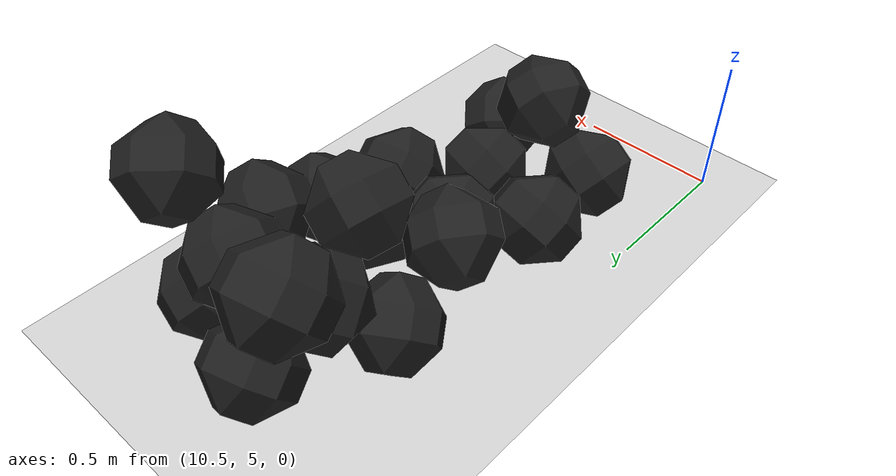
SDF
<sdf version="1.7">
 <world name="default">
  <model name="ground_plane">
   <static>1</static>
   <link name="link">
    <collision name="collision">
     <geometry><plane><normal>0 0 1</normal><size>100 100</size></plane></geometry>
     <surface><friction><ode><mu>100</mu><mu2>50</mu2></ode></friction></surface>
    </collision>
    <visual name="visual">
     <cast_shadows>0</cast_shadows>
     <geometry><plane><normal>0 0 1</normal><size>100 100</size></plane></geometry>
     <material>
      <script><uri>file://media/materials/scripts/gazebo.material</uri><name>Gazebo/Grey</name></script>
     </material>
    </visual>
   </link>
  </model>
  <model name="haoduomiantiaa_6">
   <link name="link_0">
    <inertial>
     <mass>0.2</mass>
     <inertia>
      <ixx>0.166667</ixx>
      <ixy>0</ixy>
      <ixz>0</ixz>
      <iyy>0.166667</iyy>
      <iyz>0</iyz>
      <izz>0.166667</izz>
     </inertia>
    </inertial>
    <visual name="visual">
     <geometry>
      <mesh>
       <uri>/home/lihaoyang/catkin_ws/src/pudong_gazebo/world/stl/haoduomianti.stl</uri>
       <scale>1 1 1</scale>
      </mesh>
     </geometry>
     <material>
      <lighting>1</lighting>
      <script><uri>file://media/materials/scripts/gazebo.material</uri><name>Gazebo/Black</name></script>
      <shader type="pixel"><normal_map>__default__</normal_map></shader>
      <ambient>0.3 0.3 0.3 1</ambient>
      <diffuse>0.7 0.7 0.7 1</diffuse>
      <specular>0.01 0.01 0.01 1</specular>
      <emissive>0 0 0 1</emissive>
     </material>
    </visual>
    <collision name="collision">
     <geometry>
      <mesh>
       <uri>/home/lihaoyang/catkin_ws/src/pudong_gazebo/world/stl/haoduomianti.stl</uri>
       <scale>1 1 1</scale>
      </mesh>
     </geometry>
     <surface>
      <friction>
       <ode><mu>1</mu><mu2>1</mu2><fdir1>0 0 0</fdir1><slip1>0</slip1><slip2>0</slip2></ode>
       <torsional>
        <coefficient>1</coefficient>
        <patch_radius>0</patch_radius>
        <surface_radius>0</surface_radius>
        <use_patch_radius>1</use_patch_radius>
        <ode><slip>0</slip></ode>
       </torsional>
      </friction>
      <bounce><restitution_coefficient>0</restitution_coefficient><threshold>1e+06</threshold></bounce>
      <contact>
       <collide_without_contact>0</collide_without_contact>
       <collide_without_contact_bitmask>1</collide_without_contact_bitmask>
       <collide_bitmask>1</collide_bitmask>
       <ode>
        <soft_cfm>0</soft_cfm>
        <soft_erp>0.2</soft_erp>
        <kp>1e+13</kp>
        <kd>1</kd>
        <max_vel>0.01</max_vel>
        <min_depth>0</min_depth>
       </ode>
       <bullet>
        <split_impulse>1</split_impulse>
        <split_impulse_penetration_threshold>-0.01</split_impulse_penetration_threshold>
        <soft_cfm>0</soft_cfm>
        <soft_erp>0.2</soft_erp>
        <kp>1e+13</kp>
        <kd>1</kd>
       </bullet>
      </contact>
     </surface>
    </collision>
   </link>
   <static>0</static>
   <pose>10.7575 6.37025 -0.115475 0.785391 -0.615336 -0.993175</pose>
  </model>
  <model name="haoduomiantiaa_12">
   <link name="link_0">
    <inertial>
     <mass>0.2</mass>
     <inertia>
      <ixx>0.166667</ixx>
      <ixy>0</ixy>
      <ixz>0</ixz>
      <iyy>0.166667</iyy>
      <iyz>0</iyz>
      <izz>0.166667</izz>
     </inertia>
    </inertial>
    <visual name="visual">
     <geometry>
      <mesh>
       <uri>/home/lihaoyang/catkin_ws/src/pudong_gazebo/world/stl/haoduomianti.stl</uri>
       <scale>1 1 1</scale>
      </mesh>
     </geometry>
     <material>
      <lighting>1</lighting>
      <script><uri>file://media/materials/scripts/gazebo.material</uri><name>Gazebo/Black</name></script>
      <shader type="pixel"><normal_map>__default__</normal_map></shader>
      <ambient>0.3 0.3 0.3 1</ambient>
      <diffuse>0.7 0.7 0.7 1</diffuse>
      <specular>0.01 0.01 0.01 1</specular>
      <emissive>0 0 0 1</emissive>
     </material>
    </visual>
    <collision name="collision">
     <geometry>
      <mesh>
       <uri>/home/lihaoyang/catkin_ws/src/pudong_gazebo/world/stl/haoduomianti.stl</uri>
       <scale>1 1 1</scale>
      </mesh>
     </geometry>
     <surface>
      <friction>
       <ode><mu>1</mu><mu2>1</mu2><fdir1>0 0 0</fdir1><slip1>0</slip1><slip2>0</slip2></ode>
       <torsional>
        <coefficient>1</coefficient>
        <patch_radius>0</patch_radius>
        <surface_radius>0</surface_radius>
        <use_patch_radius>1</use_patch_radius>
        <ode><slip>0</slip></ode>
       </torsional>
      </friction>
      <bounce><restitution_coefficient>0</restitution_coefficient><threshold>1e+06</threshold></bounce>
      <contact>
       <collide_without_contact>0</collide_without_contact>
       <collide_without_contact_bitmask>1</collide_without_contact_bitmask>
       <collide_bitmask>1</collide_bitmask>
       <ode>
        <soft_cfm>0</soft_cfm>
        <soft_erp>0.2</soft_erp>
        <kp>1e+13</kp>
        <kd>1</kd>
        <max_vel>0.01</max_vel>
        <min_depth>0</min_depth>
       </ode>
       <bullet>
        <split_impulse>1</split_impulse>
        <split_impulse_penetration_threshold>-0.01</split_impulse_penetration_threshold>
        <soft_cfm>0</soft_cfm>
        <soft_erp>0.2</soft_erp>
        <kp>1e+13</kp>
        <kd>1</kd>
       </bullet>
      </contact>
     </surface>
    </collision>
   </link>
   <static>0</static>
   <pose>10.9444 6.75933 -0.115547 0.78537 -0.615484 -1.28924</pose>
  </model>
  <model name="haoduomiantiaa_19">
   <link name="link_0">
    <inertial>
     <mass>0.2</mass>
     <inertia>
      <ixx>0.166667</ixx>
      <ixy>0</ixy>
      <ixz>0</ixz>
      <iyy>0.166667</iyy>
      <iyz>0</iyz>
      <izz>0.166667</izz>
     </inertia>
    </inertial>
    <visual name="visual">
     <geometry>
      <mesh>
       <uri>/home/lihaoyang/catkin_ws/src/pudong_gazebo/world/stl/haoduomianti.stl</uri>
       <scale>1 1 1</scale>
      </mesh>
     </geometry>
     <material>
      <lighting>1</lighting>
      <script><uri>file://media/materials/scripts/gazebo.material</uri><name>Gazebo/Black</name></script>
      <shader type="pixel"><normal_map>__default__</normal_map></shader>
      <ambient>0.3 0.3 0.3 1</ambient>
      <diffuse>0.7 0.7 0.7 1</diffuse>
      <specular>0.01 0.01 0.01 1</specular>
      <emissive>0 0 0 1</emissive>
     </material>
    </visual>
    <collision name="collision">
     <geometry>
      <mesh>
       <uri>/home/lihaoyang/catkin_ws/src/pudong_gazebo/world/stl/haoduomianti.stl</uri>
       <scale>1 1 1</scale>
      </mesh>
     </geometry>
     <surface>
      <friction>
       <ode><mu>1</mu><mu2>1</mu2><fdir1>0 0 0</fdir1><slip1>0</slip1><slip2>0</slip2></ode>
       <torsional>
        <coefficient>1</coefficient>
        <patch_radius>0</patch_radius>
        <surface_radius>0</surface_radius>
        <use_patch_radius>1</use_patch_radius>
        <ode><slip>0</slip></ode>
       </torsional>
      </friction>
      <bounce><restitution_coefficient>0</restitution_coefficient><threshold>1e+06</threshold></bounce>
      <contact>
       <collide_without_contact>0</collide_without_contact>
       <collide_without_contact_bitmask>1</collide_without_contact_bitmask>
       <collide_bitmask>1</collide_bitmask>
       <ode>
        <soft_cfm>0</soft_cfm>
        <soft_erp>0.2</soft_erp>
        <kp>1e+13</kp>
        <kd>1</kd>
        <max_vel>0.01</max_vel>
        <min_depth>0</min_depth>
       </ode>
       <bullet>
        <split_impulse>1</split_impulse>
        <split_impulse_penetration_threshold>-0.01</split_impulse_penetration_threshold>
        <soft_cfm>0</soft_cfm>
        <soft_erp>0.2</soft_erp>
        <kp>1e+13</kp>
        <kd>1</kd>
       </bullet>
      </contact>
     </surface>
    </collision>
   </link>
   <static>0</static>
   <pose>11.2537 5.85623 -0.115474 0.785399 -0.615345 -1.37989</pose>
  </model>
  <model name="haoduomiantiaa_26">
   <link name="link_0">
    <inertial>
     <mass>0.2</mass>
     <inertia>
      <ixx>0.166667</ixx>
      <ixy>0</ixy>
      <ixz>0</ixz>
      <iyy>0.166667</iyy>
      <iyz>0</iyz>
      <izz>0.166667</izz>
     </inertia>
    </inertial>
    <visual name="visual">
     <geometry>
      <mesh>
       <uri>/home/lihaoyang/catkin_ws/src/pudong_gazebo/world/stl/haoduomianti.stl</uri>
       <scale>1 1 1</scale>
      </mesh>
     </geometry>
     <material>
      <lighting>1</lighting>
      <script><uri>file://media/materials/scripts/gazebo.material</uri><name>Gazebo/Black</name></script>
      <shader type="pixel"><normal_map>__default__</normal_map></shader>
      <ambient>0.3 0.3 0.3 1</ambient>
      <diffuse>0.7 0.7 0.7 1</diffuse>
      <specular>0.01 0.01 0.01 1</specular>
      <emissive>0 0 0 1</emissive>
     </material>
    </visual>
    <collision name="collision">
     <geometry>
      <mesh>
       <uri>/home/lihaoyang/catkin_ws/src/pudong_gazebo/world/stl/haoduomianti.stl</uri>
       <scale>1 1 1</scale>
      </mesh>
     </geometry>
     <surface>
      <friction>
       <ode><mu>1</mu><mu2>1</mu2><fdir1>0 0 0</fdir1><slip1>0</slip1><slip2>0</slip2></ode>
       <torsional>
        <coefficient>1</coefficient>
        <patch_radius>0</patch_radius>
        <surface_radius>0</surface_radius>
        <use_patch_radius>1</use_patch_radius>
        <ode><slip>0</slip></ode>
       </torsional>
      </friction>
      <bounce><restitution_coefficient>0</restitution_coefficient><threshold>1e+06</threshold></bounce>
      <contact>
       <collide_without_contact>0</collide_without_contact>
       <collide_without_contact_bitmask>1</collide_without_contact_bitmask>
       <collide_bitmask>1</collide_bitmask>
       <ode>
        <soft_cfm>0</soft_cfm>
        <soft_erp>0.2</soft_erp>
        <kp>1e+13</kp>
        <kd>1</kd>
        <max_vel>0.01</max_vel>
        <min_depth>0</min_depth>
       </ode>
       <bullet>
        <split_impulse>1</split_impulse>
        <split_impulse_penetration_threshold>-0.01</split_impulse_penetration_threshold>
        <soft_cfm>0</soft_cfm>
        <soft_erp>0.2</soft_erp>
        <kp>1e+13</kp>
        <kd>1</kd>
       </bullet>
      </contact>
     </surface>
    </collision>
   </link>
   <static>0</static>
   <pose>11.3405 6.13184 -0.115393 0.784571 -0.615821 1.86249</pose>
  </model>
  <model name="haoduomiantiaa_32">
   <link name="link_0">
    <inertial>
     <mass>0.2</mass>
     <inertia>
      <ixx>0.166667</ixx>
      <ixy>0</ixy>
      <ixz>0</ixz>
      <iyy>0.166667</iyy>
      <iyz>0</iyz>
      <izz>0.166667</izz>
     </inertia>
    </inertial>
    <visual name="visual">
     <geometry>
      <mesh>
       <uri>/home/lihaoyang/catkin_ws/src/pudong_gazebo/world/stl/haoduomianti.stl</uri>
       <scale>1 1 1</scale>
      </mesh>
     </geometry>
     <material>
      <lighting>1</lighting>
      <script><uri>file://media/materials/scripts/gazebo.material</uri><name>Gazebo/Black</name></script>
      <shader type="pixel"><normal_map>__default__</normal_map></shader>
      <ambient>0.3 0.3 0.3 1</ambient>
      <diffuse>0.7 0.7 0.7 1</diffuse>
      <specular>0.01 0.01 0.01 1</specular>
      <emissive>0 0 0 1</emissive>
     </material>
    </visual>
    <collision name="collision">
     <geometry>
      <mesh>
       <uri>/home/lihaoyang/catkin_ws/src/pudong_gazebo/world/stl/haoduomianti.stl</uri>
       <scale>1 1 1</scale>
      </mesh>
     </geometry>
     <surface>
      <friction>
       <ode><mu>1</mu><mu2>1</mu2><fdir1>0 0 0</fdir1><slip1>0</slip1><slip2>0</slip2></ode>
       <torsional>
        <coefficient>1</coefficient>
        <patch_radius>0</patch_radius>
        <surface_radius>0</surface_radius>
        <use_patch_radius>1</use_patch_radius>
        <ode><slip>0</slip></ode>
       </torsional>
      </friction>
      <bounce><restitution_coefficient>0</restitution_coefficient><threshold>1e+06</threshold></bounce>
      <contact>
       <collide_without_contact>0</collide_without_contact>
       <collide_without_contact_bitmask>1</collide_without_contact_bitmask>
       <collide_bitmask>1</collide_bitmask>
       <ode>
        <soft_cfm>0</soft_cfm>
        <soft_erp>0.2</soft_erp>
        <kp>1e+13</kp>
        <kd>1</kd>
        <max_vel>0.01</max_vel>
        <min_depth>0</min_depth>
       </ode>
       <bullet>
        <split_impulse>1</split_impulse>
        <split_impulse_penetration_threshold>-0.01</split_impulse_penetration_threshold>
        <soft_cfm>0</soft_cfm>
        <soft_erp>0.2</soft_erp>
        <kp>1e+13</kp>
        <kd>1</kd>
       </bullet>
      </contact>
     </surface>
    </collision>
   </link>
   <static>0</static>
   <pose>11.2811 6.66832 -0.115545 0.785447 -0.615531 -0.122522</pose>
  </model>
  <model name="haoduomiantiaa_43">
   <link name="link_0">
    <inertial>
     <mass>0.2</mass>
     <inertia>
      <ixx>0.166667</ixx>
      <ixy>0</ixy>
      <ixz>0</ixz>
      <iyy>0.166667</iyy>
      <iyz>0</iyz>
      <izz>0.166667</izz>
     </inertia>
    </inertial>
    <visual name="visual">
     <geometry>
      <mesh>
       <uri>/home/lihaoyang/catkin_ws/src/pudong_gazebo/world/stl/haoduomianti.stl</uri>
       <scale>1 1 1</scale>
      </mesh>
     </geometry>
     <material>
      <lighting>1</lighting>
      <script><uri>file://media/materials/scripts/gazebo.material</uri><name>Gazebo/Black</name></script>
      <shader type="pixel"><normal_map>__default__</normal_map></shader>
      <ambient>0.3 0.3 0.3 1</ambient>
      <diffuse>0.7 0.7 0.7 1</diffuse>
      <specular>0.01 0.01 0.01 1</specular>
      <emissive>0 0 0 1</emissive>
     </material>
    </visual>
    <collision name="collision">
     <geometry>
      <mesh>
       <uri>/home/lihaoyang/catkin_ws/src/pudong_gazebo/world/stl/haoduomianti.stl</uri>
       <scale>1 1 1</scale>
      </mesh>
     </geometry>
     <surface>
      <friction>
       <ode><mu>1</mu><mu2>1</mu2><fdir1>0 0 0</fdir1><slip1>0</slip1><slip2>0</slip2></ode>
       <torsional>
        <coefficient>1</coefficient>
        <patch_radius>0</patch_radius>
        <surface_radius>0</surface_radius>
        <use_patch_radius>1</use_patch_radius>
        <ode><slip>0</slip></ode>
       </torsional>
      </friction>
      <bounce><restitution_coefficient>0</restitution_coefficient><threshold>1e+06</threshold></bounce>
      <contact>
       <collide_without_contact>0</collide_without_contact>
       <collide_without_contact_bitmask>1</collide_without_contact_bitmask>
       <collide_bitmask>1</collide_bitmask>
       <ode>
        <soft_cfm>0</soft_cfm>
        <soft_erp>0.2</soft_erp>
        <kp>1e+13</kp>
        <kd>1</kd>
        <max_vel>0.01</max_vel>
        <min_depth>0</min_depth>
       </ode>
       <bullet>
        <split_impulse>1</split_impulse>
        <split_impulse_penetration_threshold>-0.01</split_impulse_penetration_threshold>
        <soft_cfm>0</soft_cfm>
        <soft_erp>0.2</soft_erp>
        <kp>1e+13</kp>
        <kd>1</kd>
       </bullet>
      </contact>
     </surface>
    </collision>
   </link>
   <static>0</static>
   <pose>10.9525 5.91121 -0.115491 0.785396 -0.615475 0.332121</pose>
  </model>
  <model name="haoduomiantiaa_46">
   <link name="link_0">
    <inertial>
     <mass>0.2</mass>
     <inertia>
      <ixx>0.166667</ixx>
      <ixy>0</ixy>
      <ixz>0</ixz>
      <iyy>0.166667</iyy>
      <iyz>0</iyz>
      <izz>0.166667</izz>
     </inertia>
    </inertial>
    <visual name="visual">
     <geometry>
      <mesh>
       <uri>/home/lihaoyang/catkin_ws/src/pudong_gazebo/world/stl/haoduomianti.stl</uri>
       <scale>1 1 1</scale>
      </mesh>
     </geometry>
     <material>
      <lighting>1</lighting>
      <script><uri>file://media/materials/scripts/gazebo.material</uri><name>Gazebo/Black</name></script>
      <shader type="pixel"><normal_map>__default__</normal_map></shader>
      <ambient>0.3 0.3 0.3 1</ambient>
      <diffuse>0.7 0.7 0.7 1</diffuse>
      <specular>0.01 0.01 0.01 1</specular>
      <emissive>0 0 0 1</emissive>
     </material>
    </visual>
    <collision name="collision">
     <geometry>
      <mesh>
       <uri>/home/lihaoyang/catkin_ws/src/pudong_gazebo/world/stl/haoduomianti.stl</uri>
       <scale>1 1 1</scale>
      </mesh>
     </geometry>
     <surface>
      <friction>
       <ode><mu>1</mu><mu2>1</mu2><fdir1>0 0 0</fdir1><slip1>0</slip1><slip2>0</slip2></ode>
       <torsional>
        <coefficient>1</coefficient>
        <patch_radius>0</patch_radius>
        <surface_radius>0</surface_radius>
        <use_patch_radius>1</use_patch_radius>
        <ode><slip>0</slip></ode>
       </torsional>
      </friction>
      <bounce><restitution_coefficient>0</restitution_coefficient><threshold>1e+06</threshold></bounce>
      <contact>
       <collide_without_contact>0</collide_without_contact>
       <collide_without_contact_bitmask>1</collide_without_contact_bitmask>
       <collide_bitmask>1</collide_bitmask>
       <ode>
        <soft_cfm>0</soft_cfm>
        <soft_erp>0.2</soft_erp>
        <kp>1e+13</kp>
        <kd>1</kd>
        <max_vel>0.01</max_vel>
        <min_depth>0</min_depth>
       </ode>
       <bullet>
        <split_impulse>1</split_impulse>
        <split_impulse_penetration_threshold>-0.01</split_impulse_penetration_threshold>
        <soft_cfm>0</soft_cfm>
        <soft_erp>0.2</soft_erp>
        <kp>1e+13</kp>
        <kd>1</kd>
       </bullet>
      </contact>
     </surface>
    </collision>
   </link>
   <static>0</static>
   <pose>11.045 6.46718 -0.115485 0.785402 -0.615404 -0.404205</pose>
  </model>
  <model name="haoduomiantiaa_59">
   <link name="link_0">
    <inertial>
     <mass>0.2</mass>
     <inertia>
      <ixx>0.166667</ixx>
      <ixy>0</ixy>
      <ixz>0</ixz>
      <iyy>0.166667</iyy>
      <iyz>0</iyz>
      <izz>0.166667</izz>
     </inertia>
    </inertial>
    <visual name="visual">
     <geometry>
      <mesh>
       <uri>/home/lihaoyang/catkin_ws/src/pudong_gazebo/world/stl/haoduomianti.stl</uri>
       <scale>1 1 1</scale>
      </mesh>
     </geometry>
     <material>
      <lighting>1</lighting>
      <script><uri>file://media/materials/scripts/gazebo.material</uri><name>Gazebo/Black</name></script>
      <shader type="pixel"><normal_map>__default__</normal_map></shader>
      <ambient>0.3 0.3 0.3 1</ambient>
      <diffuse>0.7 0.7 0.7 1</diffuse>
      <specular>0.01 0.01 0.01 1</specular>
      <emissive>0 0 0 1</emissive>
     </material>
    </visual>
    <collision name="collision">
     <geometry>
      <mesh>
       <uri>/home/lihaoyang/catkin_ws/src/pudong_gazebo/world/stl/haoduomianti.stl</uri>
       <scale>1 1 1</scale>
      </mesh>
     </geometry>
     <surface>
      <friction>
       <ode><mu>1</mu><mu2>1</mu2><fdir1>0 0 0</fdir1><slip1>0</slip1><slip2>0</slip2></ode>
       <torsional>
        <coefficient>1</coefficient>
        <patch_radius>0</patch_radius>
        <surface_radius>0</surface_radius>
        <use_patch_radius>1</use_patch_radius>
        <ode><slip>0</slip></ode>
       </torsional>
      </friction>
      <bounce><restitution_coefficient>0</restitution_coefficient><threshold>1e+06</threshold></bounce>
      <contact>
       <collide_without_contact>0</collide_without_contact>
       <collide_without_contact_bitmask>1</collide_without_contact_bitmask>
       <collide_bitmask>1</collide_bitmask>
       <ode>
        <soft_cfm>0</soft_cfm>
        <soft_erp>0.2</soft_erp>
        <kp>1e+13</kp>
        <kd>1</kd>
        <max_vel>0.01</max_vel>
        <min_depth>0</min_depth>
       </ode>
       <bullet>
        <split_impulse>1</split_impulse>
        <split_impulse_penetration_threshold>-0.01</split_impulse_penetration_threshold>
        <soft_cfm>0</soft_cfm>
        <soft_erp>0.2</soft_erp>
        <kp>1e+13</kp>
        <kd>1</kd>
       </bullet>
      </contact>
     </surface>
    </collision>
   </link>
   <static>0</static>
   <pose>11.2981 6.40925 0.032509 0.816262 -0.587444 -0.370956</pose>
  </model>
  <model name="haoduomiantiaa_69">
   <link name="link_0">
    <inertial>
     <mass>0.2</mass>
     <inertia>
      <ixx>0.166667</ixx>
      <ixy>0</ixy>
      <ixz>0</ixz>
      <iyy>0.166667</iyy>
      <iyz>0</iyz>
      <izz>0.166667</izz>
     </inertia>
    </inertial>
    <visual name="visual">
     <geometry>
      <mesh>
       <uri>/home/lihaoyang/catkin_ws/src/pudong_gazebo/world/stl/haoduomianti.stl</uri>
       <scale>1 1 1</scale>
      </mesh>
     </geometry>
     <material>
      <lighting>1</lighting>
      <script><uri>file://media/materials/scripts/gazebo.material</uri><name>Gazebo/Black</name></script>
      <shader type="pixel"><normal_map>__default__</normal_map></shader>
      <ambient>0.3 0.3 0.3 1</ambient>
      <diffuse>0.7 0.7 0.7 1</diffuse>
      <specular>0.01 0.01 0.01 1</specular>
      <emissive>0 0 0 1</emissive>
     </material>
    </visual>
    <collision name="collision">
     <geometry>
      <mesh>
       <uri>/home/lihaoyang/catkin_ws/src/pudong_gazebo/world/stl/haoduomianti.stl</uri>
       <scale>1 1 1</scale>
      </mesh>
     </geometry>
     <surface>
      <friction>
       <ode><mu>1</mu><mu2>1</mu2><fdir1>0 0 0</fdir1><slip1>0</slip1><slip2>0</slip2></ode>
       <torsional>
        <coefficient>1</coefficient>
        <patch_radius>0</patch_radius>
        <surface_radius>0</surface_radius>
        <use_patch_radius>1</use_patch_radius>
        <ode><slip>0</slip></ode>
       </torsional>
      </friction>
      <bounce><restitution_coefficient>0</restitution_coefficient><threshold>1e+06</threshold></bounce>
      <contact>
       <collide_without_contact>0</collide_without_contact>
       <collide_without_contact_bitmask>1</collide_without_contact_bitmask>
       <collide_bitmask>1</collide_bitmask>
       <ode>
        <soft_cfm>0</soft_cfm>
        <soft_erp>0.2</soft_erp>
        <kp>1e+13</kp>
        <kd>1</kd>
        <max_vel>0.01</max_vel>
        <min_depth>0</min_depth>
       </ode>
       <bullet>
        <split_impulse>1</split_impulse>
        <split_impulse_penetration_threshold>-0.01</split_impulse_penetration_threshold>
        <soft_cfm>0</soft_cfm>
        <soft_erp>0.2</soft_erp>
        <kp>1e+13</kp>
        <kd>1</kd>
       </bullet>
      </contact>
     </surface>
    </collision>
   </link>
   <static>0</static>
   <pose>10.761 5.40555 -0.115511 0.7854 -0.615364 -0.074073</pose>
  </model>
  <model name="haoduomiantiaa_73">
   <link name="link_0">
    <inertial>
     <mass>0.2</mass>
     <inertia>
      <ixx>0.166667</ixx>
      <ixy>0</ixy>
      <ixz>0</ixz>
      <iyy>0.166667</iyy>
      <iyz>0</iyz>
      <izz>0.166667</izz>
     </inertia>
    </inertial>
    <visual name="visual">
     <geometry>
      <mesh>
       <uri>/home/lihaoyang/catkin_ws/src/pudong_gazebo/world/stl/haoduomianti.stl</uri>
       <scale>1 1 1</scale>
      </mesh>
     </geometry>
     <material>
      <lighting>1</lighting>
      <script><uri>file://media/materials/scripts/gazebo.material</uri><name>Gazebo/Black</name></script>
      <shader type="pixel"><normal_map>__default__</normal_map></shader>
      <ambient>0.3 0.3 0.3 1</ambient>
      <diffuse>0.7 0.7 0.7 1</diffuse>
      <specular>0.01 0.01 0.01 1</specular>
      <emissive>0 0 0 1</emissive>
     </material>
    </visual>
    <collision name="collision">
     <geometry>
      <mesh>
       <uri>/home/lihaoyang/catkin_ws/src/pudong_gazebo/world/stl/haoduomianti.stl</uri>
       <scale>1 1 1</scale>
      </mesh>
     </geometry>
     <surface>
      <friction>
       <ode><mu>1</mu><mu2>1</mu2><fdir1>0 0 0</fdir1><slip1>0</slip1><slip2>0</slip2></ode>
       <torsional>
        <coefficient>1</coefficient>
        <patch_radius>0</patch_radius>
        <surface_radius>0</surface_radius>
        <use_patch_radius>1</use_patch_radius>
        <ode><slip>0</slip></ode>
       </torsional>
      </friction>
      <bounce><restitution_coefficient>0</restitution_coefficient><threshold>1e+06</threshold></bounce>
      <contact>
       <collide_without_contact>0</collide_without_contact>
       <collide_without_contact_bitmask>1</collide_without_contact_bitmask>
       <collide_bitmask>1</collide_bitmask>
       <ode>
        <soft_cfm>0</soft_cfm>
        <soft_erp>0.2</soft_erp>
        <kp>1e+13</kp>
        <kd>1</kd>
        <max_vel>0.01</max_vel>
        <min_depth>0</min_depth>
       </ode>
       <bullet>
        <split_impulse>1</split_impulse>
        <split_impulse_penetration_threshold>-0.01</split_impulse_penetration_threshold>
        <soft_cfm>0</soft_cfm>
        <soft_erp>0.2</soft_erp>
        <kp>1e+13</kp>
        <kd>1</kd>
       </bullet>
      </contact>
     </surface>
    </collision>
   </link>
   <static>0</static>
   <pose>11.1811 5.37464 -0.115525 0.78523 -0.615498 -2.94067</pose>
  </model>
  <model name="haoduomiantiaa_75">
   <link name="link_0">
    <inertial>
     <mass>0.2</mass>
     <inertia>
      <ixx>0.166667</ixx>
      <ixy>0</ixy>
      <ixz>0</ixz>
      <iyy>0.166667</iyy>
      <iyz>0</iyz>
      <izz>0.166667</izz>
     </inertia>
    </inertial>
    <visual name="visual">
     <geometry>
      <mesh>
       <uri>/home/lihaoyang/catkin_ws/src/pudong_gazebo/world/stl/haoduomianti.stl</uri>
       <scale>1 1 1</scale>
      </mesh>
     </geometry>
     <material>
      <lighting>1</lighting>
      <script><uri>file://media/materials/scripts/gazebo.material</uri><name>Gazebo/Black</name></script>
      <shader type="pixel"><normal_map>__default__</normal_map></shader>
      <ambient>0.3 0.3 0.3 1</ambient>
      <diffuse>0.7 0.7 0.7 1</diffuse>
      <specular>0.01 0.01 0.01 1</specular>
      <emissive>0 0 0 1</emissive>
     </material>
    </visual>
    <collision name="collision">
     <geometry>
      <mesh>
       <uri>/home/lihaoyang/catkin_ws/src/pudong_gazebo/world/stl/haoduomianti.stl</uri>
       <scale>1 1 1</scale>
      </mesh>
     </geometry>
     <surface>
      <friction>
       <ode><mu>1</mu><mu2>1</mu2><fdir1>0 0 0</fdir1><slip1>0</slip1><slip2>0</slip2></ode>
       <torsional>
        <coefficient>1</coefficient>
        <patch_radius>0</patch_radius>
        <surface_radius>0</surface_radius>
        <use_patch_radius>1</use_patch_radius>
        <ode><slip>0</slip></ode>
       </torsional>
      </friction>
      <bounce><restitution_coefficient>0</restitution_coefficient><threshold>1e+06</threshold></bounce>
      <contact>
       <collide_without_contact>0</collide_without_contact>
       <collide_without_contact_bitmask>1</collide_without_contact_bitmask>
       <collide_bitmask>1</collide_bitmask>
       <ode>
        <soft_cfm>0</soft_cfm>
        <soft_erp>0.2</soft_erp>
        <kp>1e+13</kp>
        <kd>1</kd>
        <max_vel>0.01</max_vel>
        <min_depth>0</min_depth>
       </ode>
       <bullet>
        <split_impulse>1</split_impulse>
        <split_impulse_penetration_threshold>-0.01</split_impulse_penetration_threshold>
        <soft_cfm>0</soft_cfm>
        <soft_erp>0.2</soft_erp>
        <kp>1e+13</kp>
        <kd>1</kd>
       </bullet>
      </contact>
     </surface>
    </collision>
   </link>
   <static>0</static>
   <pose>10.7408 5.72038 -0.115463 0.785271 -0.615569 -1.76252</pose>
  </model>
  <model name="haoduomiantiaa_85">
   <link name="link_0">
    <inertial>
     <mass>0.2</mass>
     <inertia>
      <ixx>0.166667</ixx>
      <ixy>0</ixy>
      <ixz>0</ixz>
      <iyy>0.166667</iyy>
      <iyz>0</iyz>
      <izz>0.166667</izz>
     </inertia>
    </inertial>
    <visual name="visual">
     <geometry>
      <mesh>
       <uri>/home/lihaoyang/catkin_ws/src/pudong_gazebo/world/stl/haoduomianti.stl</uri>
       <scale>1 1 1</scale>
      </mesh>
     </geometry>
     <material>
      <lighting>1</lighting>
      <script><uri>file://media/materials/scripts/gazebo.material</uri><name>Gazebo/Black</name></script>
      <shader type="pixel"><normal_map>__default__</normal_map></shader>
      <ambient>0.3 0.3 0.3 1</ambient>
      <diffuse>0.7 0.7 0.7 1</diffuse>
      <specular>0.01 0.01 0.01 1</specular>
      <emissive>0 0 0 1</emissive>
     </material>
    </visual>
    <collision name="collision">
     <geometry>
      <mesh>
       <uri>/home/lihaoyang/catkin_ws/src/pudong_gazebo/world/stl/haoduomianti.stl</uri>
       <scale>1 1 1</scale>
      </mesh>
     </geometry>
     <surface>
      <friction>
       <ode><mu>1</mu><mu2>1</mu2><fdir1>0 0 0</fdir1><slip1>0</slip1><slip2>0</slip2></ode>
       <torsional>
        <coefficient>1</coefficient>
        <patch_radius>0</patch_radius>
        <surface_radius>0</surface_radius>
        <use_patch_radius>1</use_patch_radius>
        <ode><slip>0</slip></ode>
       </torsional>
      </friction>
      <bounce><restitution_coefficient>0</restitution_coefficient><threshold>1e+06</threshold></bounce>
      <contact>
       <collide_without_contact>0</collide_without_contact>
       <collide_without_contact_bitmask>1</collide_without_contact_bitmask>
       <collide_bitmask>1</collide_bitmask>
       <ode>
        <soft_cfm>0</soft_cfm>
        <soft_erp>0.2</soft_erp>
        <kp>1e+13</kp>
        <kd>1</kd>
        <max_vel>0.01</max_vel>
        <min_depth>0</min_depth>
       </ode>
       <bullet>
        <split_impulse>1</split_impulse>
        <split_impulse_penetration_threshold>-0.01</split_impulse_penetration_threshold>
        <soft_cfm>0</soft_cfm>
        <soft_erp>0.2</soft_erp>
        <kp>1e+13</kp>
        <kd>1</kd>
       </bullet>
      </contact>
     </surface>
    </collision>
   </link>
   <static>0</static>
   <pose>10.7269 6.61675 0.128043 0.65385 -0.133899 -0.592993</pose>
  </model>
  <model name="haoduomiantiaa_92">
   <link name="link_0">
    <inertial>
     <mass>0.2</mass>
     <inertia>
      <ixx>0.166667</ixx>
      <ixy>0</ixy>
      <ixz>0</ixz>
      <iyy>0.166667</iyy>
      <iyz>0</iyz>
      <izz>0.166667</izz>
     </inertia>
    </inertial>
    <visual name="visual">
     <geometry>
      <mesh>
       <uri>/home/lihaoyang/catkin_ws/src/pudong_gazebo/world/stl/haoduomianti.stl</uri>
       <scale>1 1 1</scale>
      </mesh>
     </geometry>
     <material>
      <lighting>1</lighting>
      <script><uri>file://media/materials/scripts/gazebo.material</uri><name>Gazebo/Black</name></script>
      <shader type="pixel"><normal_map>__default__</normal_map></shader>
      <ambient>0.3 0.3 0.3 1</ambient>
      <diffuse>0.7 0.7 0.7 1</diffuse>
      <specular>0.01 0.01 0.01 1</specular>
      <emissive>0 0 0 1</emissive>
     </material>
    </visual>
    <collision name="collision">
     <geometry>
      <mesh>
       <uri>/home/lihaoyang/catkin_ws/src/pudong_gazebo/world/stl/haoduomianti.stl</uri>
       <scale>1 1 1</scale>
      </mesh>
     </geometry>
     <surface>
      <friction>
       <ode><mu>1</mu><mu2>1</mu2><fdir1>0 0 0</fdir1><slip1>0</slip1><slip2>0</slip2></ode>
       <torsional>
        <coefficient>1</coefficient>
        <patch_radius>0</patch_radius>
        <surface_radius>0</surface_radius>
        <use_patch_radius>1</use_patch_radius>
        <ode><slip>0</slip></ode>
       </torsional>
      </friction>
      <bounce><restitution_coefficient>0</restitution_coefficient><threshold>1e+06</threshold></bounce>
      <contact>
       <collide_without_contact>0</collide_without_contact>
       <collide_without_contact_bitmask>1</collide_without_contact_bitmask>
       <collide_bitmask>1</collide_bitmask>
       <ode>
        <soft_cfm>0</soft_cfm>
        <soft_erp>0.2</soft_erp>
        <kp>1e+13</kp>
        <kd>1</kd>
        <max_vel>0.01</max_vel>
        <min_depth>0</min_depth>
       </ode>
       <bullet>
        <split_impulse>1</split_impulse>
        <split_impulse_penetration_threshold>-0.01</split_impulse_penetration_threshold>
        <soft_cfm>0</soft_cfm>
        <soft_erp>0.2</soft_erp>
        <kp>1e+13</kp>
        <kd>1</kd>
       </bullet>
      </contact>
     </surface>
    </collision>
   </link>
   <static>0</static>
   <pose>11.023 6.16216 -0.014905 0.806688 -0.464553 0.453787</pose>
  </model>
  <model name="haoduomiantiaa_97">
   <link name="link_0">
    <inertial>
     <mass>0.2</mass>
     <inertia>
      <ixx>0.166667</ixx>
      <ixy>0</ixy>
      <ixz>0</ixz>
      <iyy>0.166667</iyy>
      <iyz>0</iyz>
      <izz>0.166667</izz>
     </inertia>
    </inertial>
    <visual name="visual">
     <geometry>
      <mesh>
       <uri>/home/lihaoyang/catkin_ws/src/pudong_gazebo/world/stl/haoduomianti.stl</uri>
       <scale>1 1 1</scale>
      </mesh>
     </geometry>
     <material>
      <lighting>1</lighting>
      <script><uri>file://media/materials/scripts/gazebo.material</uri><name>Gazebo/Black</name></script>
      <shader type="pixel"><normal_map>__default__</normal_map></shader>
      <ambient>0.3 0.3 0.3 1</ambient>
      <diffuse>0.7 0.7 0.7 1</diffuse>
      <specular>0.01 0.01 0.01 1</specular>
      <emissive>0 0 0 1</emissive>
     </material>
    </visual>
    <collision name="collision">
     <geometry>
      <mesh>
       <uri>/home/lihaoyang/catkin_ws/src/pudong_gazebo/world/stl/haoduomianti.stl</uri>
       <scale>1 1 1</scale>
      </mesh>
     </geometry>
     <surface>
      <friction>
       <ode><mu>1</mu><mu2>1</mu2><fdir1>0 0 0</fdir1><slip1>0</slip1><slip2>0</slip2></ode>
       <torsional>
        <coefficient>1</coefficient>
        <patch_radius>0</patch_radius>
        <surface_radius>0</surface_radius>
        <use_patch_radius>1</use_patch_radius>
        <ode><slip>0</slip></ode>
       </torsional>
      </friction>
      <bounce><restitution_coefficient>0</restitution_coefficient><threshold>1e+06</threshold></bounce>
      <contact>
       <collide_without_contact>0</collide_without_contact>
       <collide_without_contact_bitmask>1</collide_without_contact_bitmask>
       <collide_bitmask>1</collide_bitmask>
       <ode>
        <soft_cfm>0</soft_cfm>
        <soft_erp>0.2</soft_erp>
        <kp>1e+13</kp>
        <kd>1</kd>
        <max_vel>0.01</max_vel>
        <min_depth>0</min_depth>
       </ode>
       <bullet>
        <split_impulse>1</split_impulse>
        <split_impulse_penetration_threshold>-0.01</split_impulse_penetration_threshold>
        <soft_cfm>0</soft_cfm>
        <soft_erp>0.2</soft_erp>
        <kp>1e+13</kp>
        <kd>1</kd>
       </bullet>
      </contact>
     </surface>
    </collision>
   </link>
   <static>0</static>
   <pose>11.1225 6.65972 0.120194 0.755185 -0.574534 -2.26777</pose>
  </model>
  <model name="haoduomiantiaa_113">
   <link name="link_0">
    <inertial>
     <mass>0.2</mass>
     <inertia>
      <ixx>0.166667</ixx>
      <ixy>0</ixy>
      <ixz>0</ixz>
      <iyy>0.166667</iyy>
      <iyz>0</iyz>
      <izz>0.166667</izz>
     </inertia>
    </inertial>
    <visual name="visual">
     <geometry>
      <mesh>
       <uri>/home/lihaoyang/catkin_ws/src/pudong_gazebo/world/stl/haoduomianti.stl</uri>
       <scale>1 1 1</scale>
      </mesh>
     </geometry>
     <material>
      <lighting>1</lighting>
      <script><uri>file://media/materials/scripts/gazebo.material</uri><name>Gazebo/Black</name></script>
      <shader type="pixel"><normal_map>__default__</normal_map></shader>
      <ambient>0.3 0.3 0.3 1</ambient>
      <diffuse>0.7 0.7 0.7 1</diffuse>
      <specular>0.01 0.01 0.01 1</specular>
      <emissive>0 0 0 1</emissive>
     </material>
    </visual>
    <collision name="collision">
     <geometry>
      <mesh>
       <uri>/home/lihaoyang/catkin_ws/src/pudong_gazebo/world/stl/haoduomianti.stl</uri>
       <scale>1 1 1</scale>
      </mesh>
     </geometry>
     <surface>
      <friction>
       <ode><mu>1</mu><mu2>1</mu2><fdir1>0 0 0</fdir1><slip1>0</slip1><slip2>0</slip2></ode>
       <torsional>
        <coefficient>1</coefficient>
        <patch_radius>0</patch_radius>
        <surface_radius>0</surface_radius>
        <use_patch_radius>1</use_patch_radius>
        <ode><slip>0</slip></ode>
       </torsional>
      </friction>
      <bounce><restitution_coefficient>0</restitution_coefficient><threshold>1e+06</threshold></bounce>
      <contact>
       <collide_without_contact>0</collide_without_contact>
       <collide_without_contact_bitmask>1</collide_without_contact_bitmask>
       <collide_bitmask>1</collide_bitmask>
       <ode>
        <soft_cfm>0</soft_cfm>
        <soft_erp>0.2</soft_erp>
        <kp>1e+13</kp>
        <kd>1</kd>
        <max_vel>0.01</max_vel>
        <min_depth>0</min_depth>
       </ode>
       <bullet>
        <split_impulse>1</split_impulse>
        <split_impulse_penetration_threshold>-0.01</split_impulse_penetration_threshold>
        <soft_cfm>0</soft_cfm>
        <soft_erp>0.2</soft_erp>
        <kp>1e+13</kp>
        <kd>1</kd>
       </bullet>
      </contact>
     </surface>
    </collision>
   </link>
   <static>0</static>
   <pose>10.7493 6.13523 0.049711 0.845436 -0.465283 -0.624061</pose>
  </model>
  <model name="haoduomiantiaa_114">
   <link name="link_0">
    <inertial>
     <mass>0.2</mass>
     <inertia>
      <ixx>0.166667</ixx>
      <ixy>0</ixy>
      <ixz>0</ixz>
      <iyy>0.166667</iyy>
      <iyz>0</iyz>
      <izz>0.166667</izz>
     </inertia>
    </inertial>
    <visual name="visual">
     <geometry>
      <mesh>
       <uri>/home/lihaoyang/catkin_ws/src/pudong_gazebo/world/stl/haoduomianti.stl</uri>
       <scale>1 1 1</scale>
      </mesh>
     </geometry>
     <material>
      <lighting>1</lighting>
      <script><uri>file://media/materials/scripts/gazebo.material</uri><name>Gazebo/Black</name></script>
      <shader type="pixel"><normal_map>__default__</normal_map></shader>
      <ambient>0.3 0.3 0.3 1</ambient>
      <diffuse>0.7 0.7 0.7 1</diffuse>
      <specular>0.01 0.01 0.01 1</specular>
      <emissive>0 0 0 1</emissive>
     </material>
    </visual>
    <collision name="collision">
     <geometry>
      <mesh>
       <uri>/home/lihaoyang/catkin_ws/src/pudong_gazebo/world/stl/haoduomianti.stl</uri>
       <scale>1 1 1</scale>
      </mesh>
     </geometry>
     <surface>
      <friction>
       <ode><mu>1</mu><mu2>1</mu2><fdir1>0 0 0</fdir1><slip1>0</slip1><slip2>0</slip2></ode>
       <torsional>
        <coefficient>1</coefficient>
        <patch_radius>0</patch_radius>
        <surface_radius>0</surface_radius>
        <use_patch_radius>1</use_patch_radius>
        <ode><slip>0</slip></ode>
       </torsional>
      </friction>
      <bounce><restitution_coefficient>0</restitution_coefficient><threshold>1e+06</threshold></bounce>
      <contact>
       <collide_without_contact>0</collide_without_contact>
       <collide_without_contact_bitmask>1</collide_without_contact_bitmask>
       <collide_bitmask>1</collide_bitmask>
       <ode>
        <soft_cfm>0</soft_cfm>
        <soft_erp>0.2</soft_erp>
        <kp>1e+13</kp>
        <kd>1</kd>
        <max_vel>0.01</max_vel>
        <min_depth>0</min_depth>
       </ode>
       <bullet>
        <split_impulse>1</split_impulse>
        <split_impulse_penetration_threshold>-0.01</split_impulse_penetration_threshold>
        <soft_cfm>0</soft_cfm>
        <soft_erp>0.2</soft_erp>
        <kp>1e+13</kp>
        <kd>1</kd>
       </bullet>
      </contact>
     </surface>
    </collision>
   </link>
   <static>0</static>
   <pose>10.7712 6.76464 0.325648 0.757193 -0.689433 0.803881</pose>
  </model>
  <model name="haoduomiantiaa_122">
   <link name="link_0">
    <inertial>
     <mass>0.2</mass>
     <inertia>
      <ixx>0.166667</ixx>
      <ixy>0</ixy>
      <ixz>0</ixz>
      <iyy>0.166667</iyy>
      <iyz>0</iyz>
      <izz>0.166667</izz>
     </inertia>
    </inertial>
    <visual name="visual">
     <geometry>
      <mesh>
       <uri>/home/lihaoyang/catkin_ws/src/pudong_gazebo/world/stl/haoduomianti.stl</uri>
       <scale>1 1 1</scale>
      </mesh>
     </geometry>
     <material>
      <lighting>1</lighting>
      <script><uri>file://media/materials/scripts/gazebo.material</uri><name>Gazebo/Black</name></script>
      <shader type="pixel"><normal_map>__default__</normal_map></shader>
      <ambient>0.3 0.3 0.3 1</ambient>
      <diffuse>0.7 0.7 0.7 1</diffuse>
      <specular>0.01 0.01 0.01 1</specular>
      <emissive>0 0 0 1</emissive>
     </material>
    </visual>
    <collision name="collision">
     <geometry>
      <mesh>
       <uri>/home/lihaoyang/catkin_ws/src/pudong_gazebo/world/stl/haoduomianti.stl</uri>
       <scale>1 1 1</scale>
      </mesh>
     </geometry>
     <surface>
      <friction>
       <ode><mu>1</mu><mu2>1</mu2><fdir1>0 0 0</fdir1><slip1>0</slip1><slip2>0</slip2></ode>
       <torsional>
        <coefficient>1</coefficient>
        <patch_radius>0</patch_radius>
        <surface_radius>0</surface_radius>
        <use_patch_radius>1</use_patch_radius>
        <ode><slip>0</slip></ode>
       </torsional>
      </friction>
      <bounce><restitution_coefficient>0</restitution_coefficient><threshold>1e+06</threshold></bounce>
      <contact>
       <collide_without_contact>0</collide_without_contact>
       <collide_without_contact_bitmask>1</collide_without_contact_bitmask>
       <collide_bitmask>1</collide_bitmask>
       <ode>
        <soft_cfm>0</soft_cfm>
        <soft_erp>0.2</soft_erp>
        <kp>1e+13</kp>
        <kd>1</kd>
        <max_vel>0.01</max_vel>
        <min_depth>0</min_depth>
       </ode>
       <bullet>
        <split_impulse>1</split_impulse>
        <split_impulse_penetration_threshold>-0.01</split_impulse_penetration_threshold>
        <soft_cfm>0</soft_cfm>
        <soft_erp>0.2</soft_erp>
        <kp>1e+13</kp>
        <kd>1</kd>
       </bullet>
      </contact>
     </surface>
    </collision>
   </link>
   <static>0</static>
   <pose>11.3421 6.68064 0.328435 0.824113 -0.683455 1.33008</pose>
  </model>
  <model name="haoduomiantiaa_127">
   <link name="link_0">
    <inertial>
     <mass>0.2</mass>
     <inertia>
      <ixx>0.166667</ixx>
      <ixy>0</ixy>
      <ixz>0</ixz>
      <iyy>0.166667</iyy>
      <iyz>0</iyz>
      <izz>0.166667</izz>
     </inertia>
    </inertial>
    <visual name="visual">
     <geometry>
      <mesh>
       <uri>/home/lihaoyang/catkin_ws/src/pudong_gazebo/world/stl/haoduomianti.stl</uri>
       <scale>1 1 1</scale>
      </mesh>
     </geometry>
     <material>
      <lighting>1</lighting>
      <script><uri>file://media/materials/scripts/gazebo.material</uri><name>Gazebo/Black</name></script>
      <shader type="pixel"><normal_map>__default__</normal_map></shader>
      <ambient>0.3 0.3 0.3 1</ambient>
      <diffuse>0.7 0.7 0.7 1</diffuse>
      <specular>0.01 0.01 0.01 1</specular>
      <emissive>0 0 0 1</emissive>
     </material>
    </visual>
    <collision name="collision">
     <geometry>
      <mesh>
       <uri>/home/lihaoyang/catkin_ws/src/pudong_gazebo/world/stl/haoduomianti.stl</uri>
       <scale>1 1 1</scale>
      </mesh>
     </geometry>
     <surface>
      <friction>
       <ode><mu>1</mu><mu2>1</mu2><fdir1>0 0 0</fdir1><slip1>0</slip1><slip2>0</slip2></ode>
       <torsional>
        <coefficient>1</coefficient>
        <patch_radius>0</patch_radius>
        <surface_radius>0</surface_radius>
        <use_patch_radius>1</use_patch_radius>
        <ode><slip>0</slip></ode>
       </torsional>
      </friction>
      <bounce><restitution_coefficient>0</restitution_coefficient><threshold>1e+06</threshold></bounce>
      <contact>
       <collide_without_contact>0</collide_without_contact>
       <collide_without_contact_bitmask>1</collide_without_contact_bitmask>
       <collide_bitmask>1</collide_bitmask>
       <ode>
        <soft_cfm>0</soft_cfm>
        <soft_erp>0.2</soft_erp>
        <kp>1e+13</kp>
        <kd>1</kd>
        <max_vel>0.01</max_vel>
        <min_depth>0</min_depth>
       </ode>
       <bullet>
        <split_impulse>1</split_impulse>
        <split_impulse_penetration_threshold>-0.01</split_impulse_penetration_threshold>
        <soft_cfm>0</soft_cfm>
        <soft_erp>0.2</soft_erp>
        <kp>1e+13</kp>
        <kd>1</kd>
       </bullet>
      </contact>
     </surface>
    </collision>
   </link>
   <static>0</static>
   <pose>10.912 5.46928 0.117836 0.487617 -0.656071 -2.31045</pose>
  </model>
  <model name="haoduomiantiaa_133">
   <link name="link_0">
    <inertial>
     <mass>0.2</mass>
     <inertia>
      <ixx>0.166667</ixx>
      <ixy>0</ixy>
      <ixz>0</ixz>
      <iyy>0.166667</iyy>
      <iyz>0</iyz>
      <izz>0.166667</izz>
     </inertia>
    </inertial>
    <visual name="visual">
     <geometry>
      <mesh>
       <uri>/home/lihaoyang/catkin_ws/src/pudong_gazebo/world/stl/haoduomianti.stl</uri>
       <scale>1 1 1</scale>
      </mesh>
     </geometry>
     <material>
      <lighting>1</lighting>
      <script><uri>file://media/materials/scripts/gazebo.material</uri><name>Gazebo/Black</name></script>
      <shader type="pixel"><normal_map>__default__</normal_map></shader>
      <ambient>0.3 0.3 0.3 1</ambient>
      <diffuse>0.7 0.7 0.7 1</diffuse>
      <specular>0.01 0.01 0.01 1</specular>
      <emissive>0 0 0 1</emissive>
     </material>
    </visual>
    <collision name="collision">
     <geometry>
      <mesh>
       <uri>/home/lihaoyang/catkin_ws/src/pudong_gazebo/world/stl/haoduomianti.stl</uri>
       <scale>1 1 1</scale>
      </mesh>
     </geometry>
     <surface>
      <friction>
       <ode><mu>1</mu><mu2>1</mu2><fdir1>0 0 0</fdir1><slip1>0</slip1><slip2>0</slip2></ode>
       <torsional>
        <coefficient>1</coefficient>
        <patch_radius>0</patch_radius>
        <surface_radius>0</surface_radius>
        <use_patch_radius>1</use_patch_radius>
        <ode><slip>0</slip></ode>
       </torsional>
      </friction>
      <bounce><restitution_coefficient>0</restitution_coefficient><threshold>1e+06</threshold></bounce>
      <contact>
       <collide_without_contact>0</collide_without_contact>
       <collide_without_contact_bitmask>1</collide_without_contact_bitmask>
       <collide_bitmask>1</collide_bitmask>
       <ode>
        <soft_cfm>0</soft_cfm>
        <soft_erp>0.2</soft_erp>
        <kp>1e+13</kp>
        <kd>1</kd>
        <max_vel>0.01</max_vel>
        <min_depth>0</min_depth>
       </ode>
       <bullet>
        <split_impulse>1</split_impulse>
        <split_impulse_penetration_threshold>-0.01</split_impulse_penetration_threshold>
        <soft_cfm>0</soft_cfm>
        <soft_erp>0.2</soft_erp>
        <kp>1e+13</kp>
        <kd>1</kd>
       </bullet>
      </contact>
     </surface>
    </collision>
   </link>
   <static>0</static>
   <pose>11.0432 5.63527 -0.115454 0.785188 -0.61568 2.32319</pose>
  </model>
  <model name="haoduomiantiaa_135">
   <link name="link_0">
    <inertial>
     <mass>0.2</mass>
     <inertia>
      <ixx>0.166667</ixx>
      <ixy>0</ixy>
      <ixz>0</ixz>
      <iyy>0.166667</iyy>
      <iyz>0</iyz>
      <izz>0.166667</izz>
     </inertia>
    </inertial>
    <visual name="visual">
     <geometry>
      <mesh>
       <uri>/home/lihaoyang/catkin_ws/src/pudong_gazebo/world/stl/haoduomianti.stl</uri>
       <scale>1 1 1</scale>
      </mesh>
     </geometry>
     <material>
      <lighting>1</lighting>
      <script><uri>file://media/materials/scripts/gazebo.material</uri><name>Gazebo/Black</name></script>
      <shader type="pixel"><normal_map>__default__</normal_map></shader>
      <ambient>0.3 0.3 0.3 1</ambient>
      <diffuse>0.7 0.7 0.7 1</diffuse>
      <specular>0.01 0.01 0.01 1</specular>
      <emissive>0 0 0 1</emissive>
     </material>
    </visual>
    <collision name="collision">
     <geometry>
      <mesh>
       <uri>/home/lihaoyang/catkin_ws/src/pudong_gazebo/world/stl/haoduomianti.stl</uri>
       <scale>1 1 1</scale>
      </mesh>
     </geometry>
     <surface>
      <friction>
       <ode><mu>1</mu><mu2>1</mu2><fdir1>0 0 0</fdir1><slip1>0</slip1><slip2>0</slip2></ode>
       <torsional>
        <coefficient>1</coefficient>
        <patch_radius>0</patch_radius>
        <surface_radius>0</surface_radius>
        <use_patch_radius>1</use_patch_radius>
        <ode><slip>0</slip></ode>
       </torsional>
      </friction>
      <bounce><restitution_coefficient>0</restitution_coefficient><threshold>1e+06</threshold></bounce>
      <contact>
       <collide_without_contact>0</collide_without_contact>
       <collide_without_contact_bitmask>1</collide_without_contact_bitmask>
       <collide_bitmask>1</collide_bitmask>
       <ode>
        <soft_cfm>0</soft_cfm>
        <soft_erp>0.2</soft_erp>
        <kp>1e+13</kp>
        <kd>1</kd>
        <max_vel>0.01</max_vel>
        <min_depth>0</min_depth>
       </ode>
       <bullet>
        <split_impulse>1</split_impulse>
        <split_impulse_penetration_threshold>-0.01</split_impulse_penetration_threshold>
        <soft_cfm>0</soft_cfm>
        <soft_erp>0.2</soft_erp>
        <kp>1e+13</kp>
        <kd>1</kd>
       </bullet>
      </contact>
     </surface>
    </collision>
   </link>
   <static>0</static>
   <pose>10.9584 6.38649 0.232193 0.485182 -0.759404 2.34571</pose>
  </model>
 </world>
</sdf>
